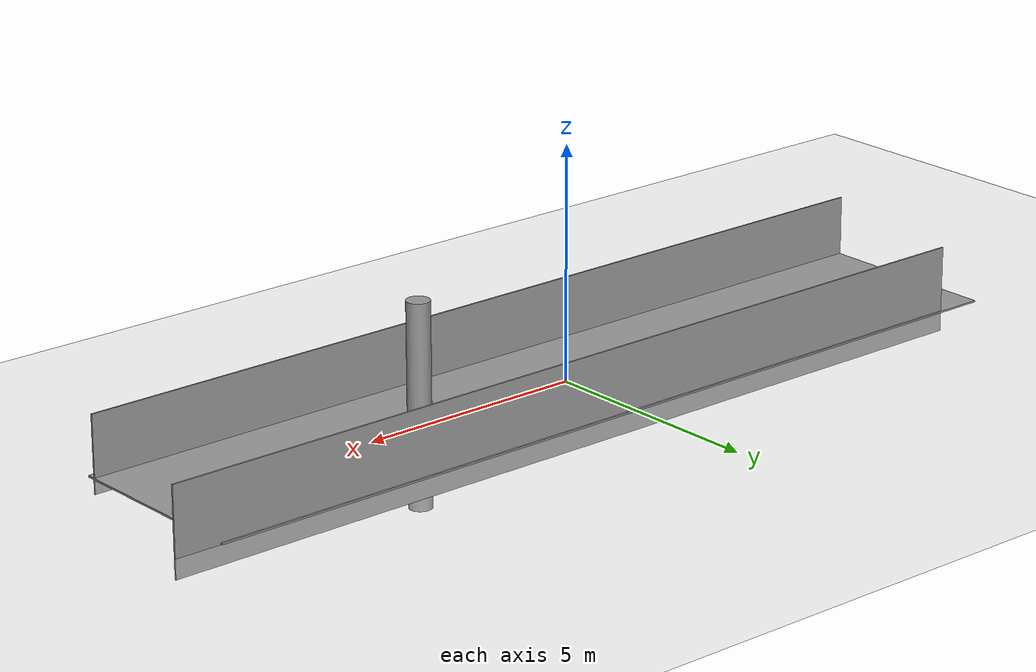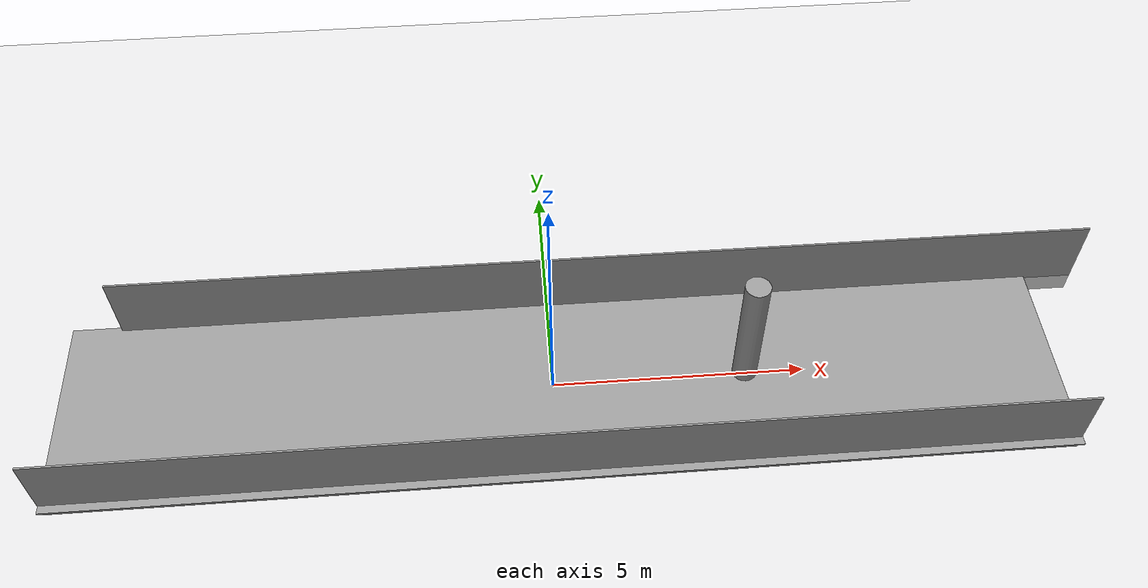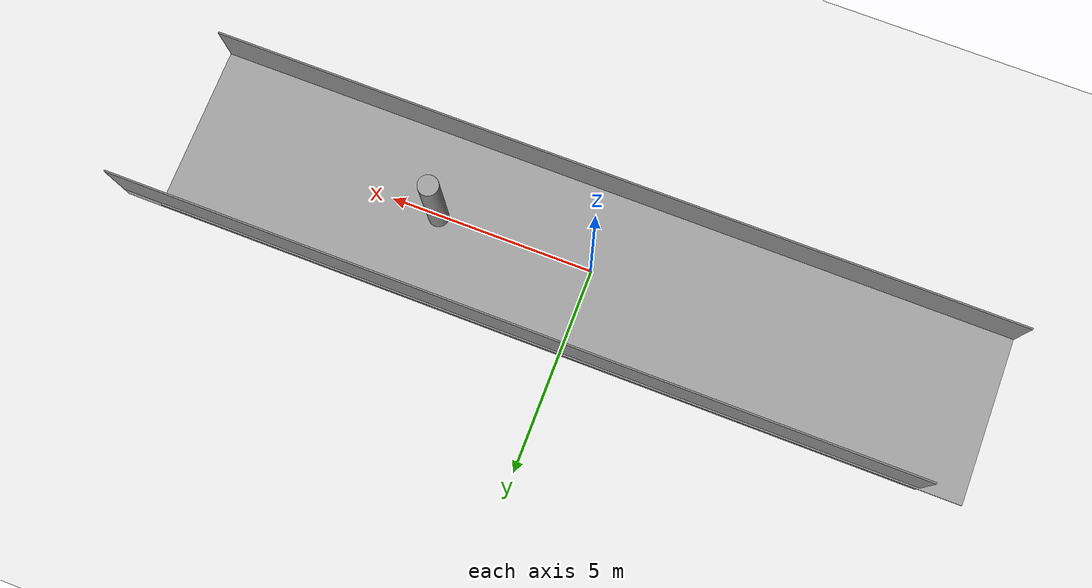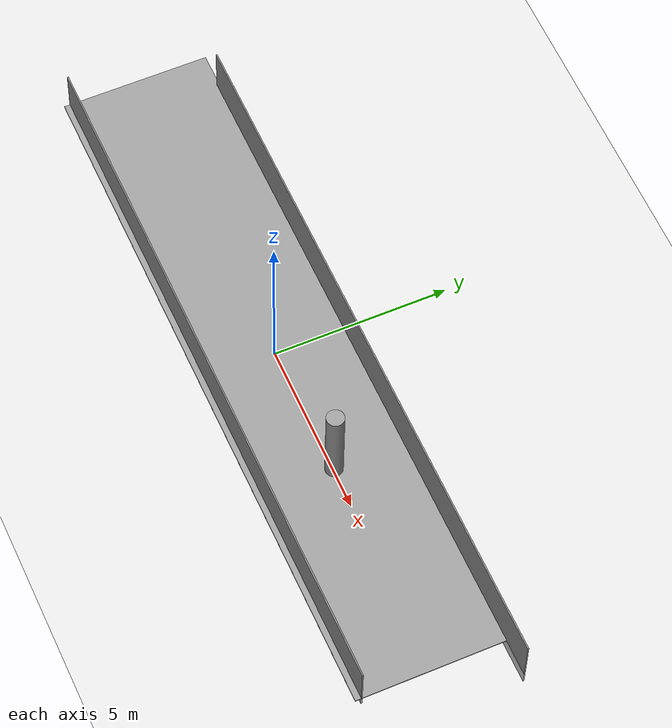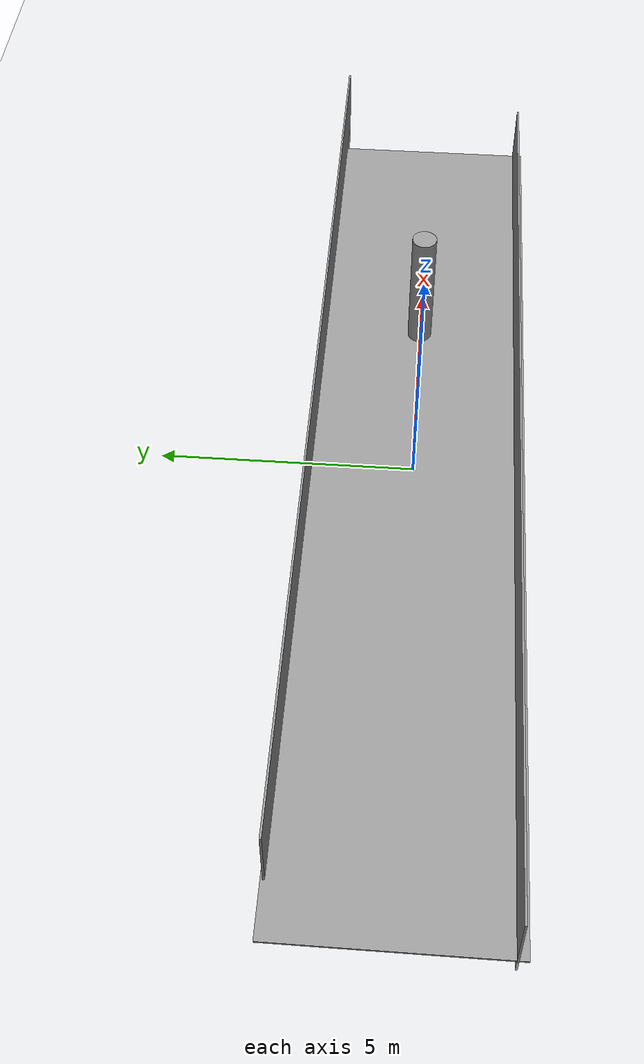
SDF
<sdf version="1.6">
 <world name="default">
  <light name="sun" type="directional">
   <pose>0 0 10 0 -0 0</pose>
   <diffuse>0.8 0.8 0.8 1</diffuse>
   <specular>0.2 0.2 0.2 1</specular>
   <attenuation>
    <range>1000</range>
    <constant>0.9</constant>
    <linear>0.01</linear>
    <quadratic>0.001</quadratic>
   </attenuation>
   <direction>-0.5 0.1 -0.9</direction>
  </light>
  <model name="ground_plane">
   <static>1</static>
   <link name="link">
    <collision name="collision">
     <geometry><plane><normal>0 0 1</normal><size>100 100</size></plane></geometry>
     <surface><friction><ode><mu>100</mu><mu2>50</mu2></ode></friction></surface>
    </collision>
    <visual name="visual">
     <cast_shadows>0</cast_shadows>
     <geometry><plane><normal>0 0 1</normal><size>100 100</size></plane></geometry>
     <material>
      <script><uri>file://media/materials/scripts/gazebo.material</uri><name>Gazebo/Grey</name></script>
     </material>
    </visual>
   </link>
  </model>
  <gravity>0 0 -9.8</gravity>
  <magnetic_field>6e-06 2.3e-05 -4.2e-05</magnetic_field>
  <atmosphere type="adiabatic"/>
  <physics name="default_physics" default="0" type="ode">
   <max_step_size>0.001</max_step_size>
   <real_time_factor>1</real_time_factor>
   <real_time_update_rate>1000</real_time_update_rate>
  </physics>
  <scene><ambient>0.4 0.4 0.4 1</ambient><background>0.7 0.7 0.7 1</background><shadows>1</shadows></scene>
  <spherical_coordinates>
   <surface_model>EARTH_WGS84</surface_model>
   <latitude_deg>0</latitude_deg>
   <longitude_deg>0</longitude_deg>
   <elevation>0</elevation>
   <heading_deg>0</heading_deg>
  </spherical_coordinates>
  <model name="unit_box">
   <pose>0.17832 -1.99034 0.5 0 -0 0</pose>
   <link name="link">
    <inertial>
     <mass>1</mass>
     <inertia>
      <ixx>0.166667</ixx>
      <ixy>0</ixy>
      <ixz>0</ixz>
      <iyy>0.166667</iyy>
      <iyz>0</iyz>
      <izz>0.166667</izz>
     </inertia>
    </inertial>
    <collision name="collision"><geometry><box><size>19.7935 0.0368999 1.63012</size></box></geometry></collision>
    <visual name="visual">
     <geometry><box><size>19.7935 0.0368999 1.63012</size></box></geometry>
     <material>
      <script><name>Gazebo/Grey</name><uri>file://media/materials/scripts/gazebo.material</uri></script>
     </material>
    </visual>
   </link>
  </model>
  <model name="unit_box_clone">
   <pose>1.19072 2.03134 0.5 0 -0 0</pose>
   <link name="link">
    <inertial>
     <mass>1</mass>
     <inertia>
      <ixx>0.166667</ixx>
      <ixy>0</ixy>
      <ixz>0</ixz>
      <iyy>0.166667</iyy>
      <iyz>0</iyz>
      <izz>0.166667</izz>
     </inertia>
    </inertial>
    <collision name="collision"><geometry><box><size>19.7935 0.0369 1.85791</size></box></geometry></collision>
    <visual name="visual">
     <geometry><box><size>19.7935 0.0369 1.85791</size></box></geometry>
     <material>
      <script><name>Gazebo/Grey</name><uri>file://media/materials/scripts/gazebo.material</uri></script>
     </material>
    </visual>
   </link>
  </model>
  <model name="unit_box_clone_clone">
   <pose>0.187123 -0.041437 0.00181 1.57064 -0 0</pose>
   <link name="link">
    <inertial>
     <mass>1</mass>
     <inertia>
      <ixx>0.166667</ixx>
      <ixy>0</ixy>
      <ixz>0</ixz>
      <iyy>0.166667</iyy>
      <iyz>0</iyz>
      <izz>0.166667</izz>
     </inertia>
    </inertial>
    <collision name="collision"><geometry><box><size>19.7935 0.0369 4.26361</size></box></geometry></collision>
    <visual name="visual">
     <geometry><box><size>19.7935 0.0369 4.26361</size></box></geometry>
     <material>
      <script><name>Gazebo/Grey</name><uri>file://media/materials/scripts/gazebo.material</uri></script>
     </material>
    </visual>
   </link>
  </model>
  <model name="unit_cylinder">
   <pose>3.82195 0.033689 0.5 0 -0 0</pose>
   <link name="link">
    <inertial>
     <mass>1</mass>
     <inertia><ixx>0.145833</ixx><ixy>0</ixy><ixz>0</ixz><iyy>0.145833</iyy><iyz>0</iyz><izz>0.125</izz></inertia>
    </inertial>
    <collision name="collision">
     <geometry><cylinder><radius>0.245423</radius><length>4.32279</length></cylinder></geometry>
    </collision>
    <visual name="visual">
     <geometry><cylinder><radius>0.245423</radius><length>4.32279</length></cylinder></geometry>
     <material>
      <script><name>Gazebo/Grey</name><uri>file://media/materials/scripts/gazebo.material</uri></script>
     </material>
    </visual>
   </link>
  </model>
 </world>
</sdf>
